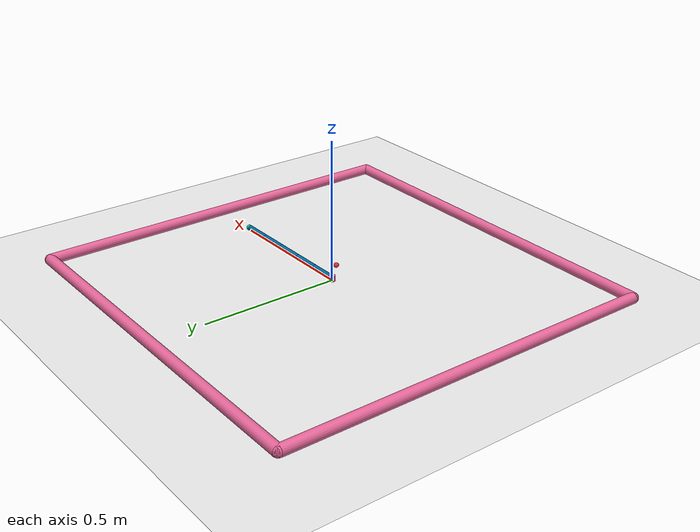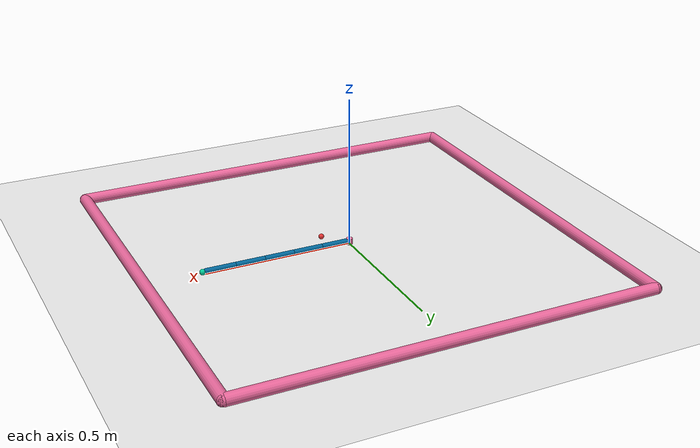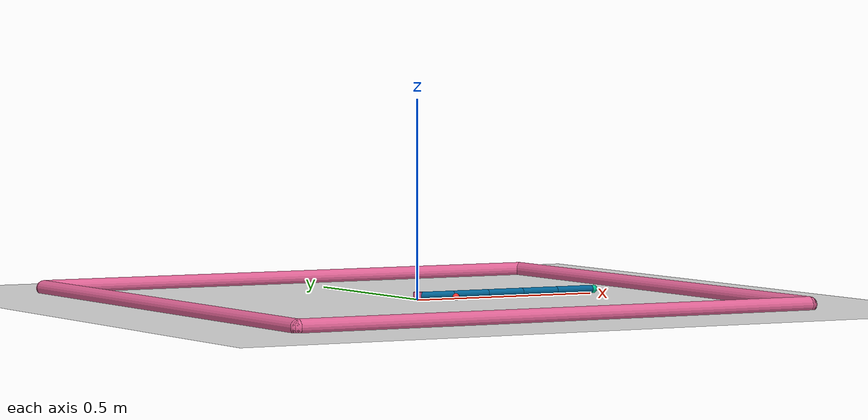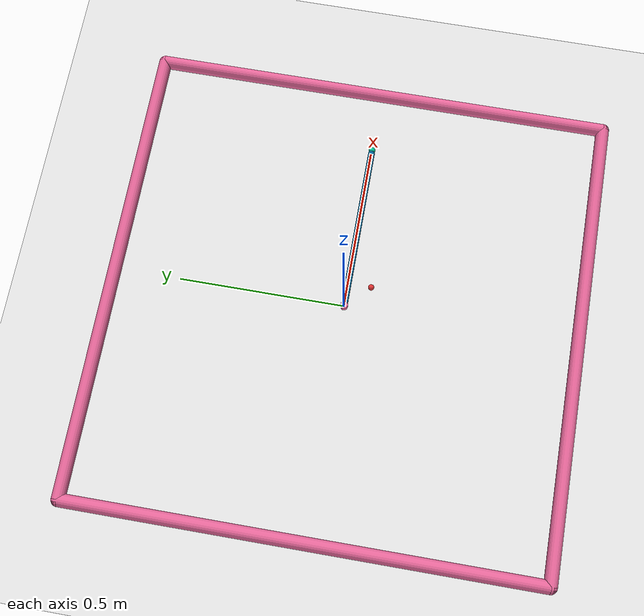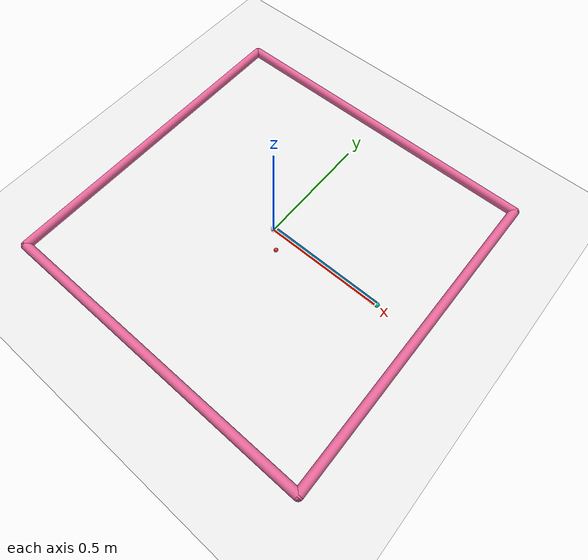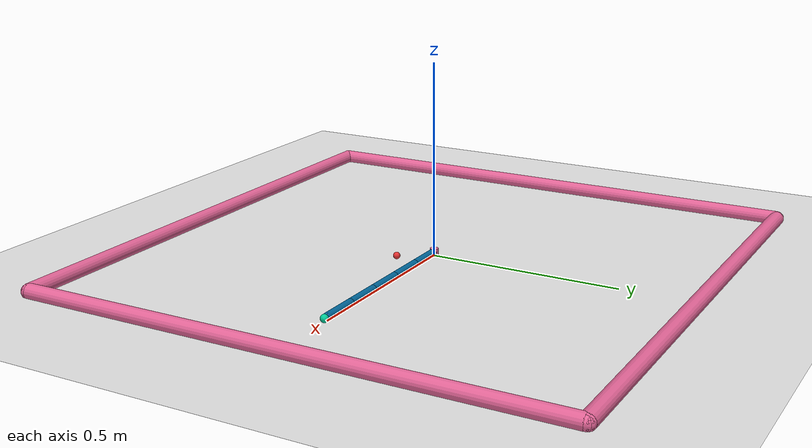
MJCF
<mujoco model="reacher">
	<compiler angle="radian" inertiafromgeom="true"/>
	<default>
		<joint armature="1" damping="1" limited="true"/>
		<geom contype="1" conaffinity="1" friction="1 0.1 0.1" rgba="0.7 0.7 0 1"/>
	</default>
	<option gravity="0 0 -9.81" integrator="RK4" timestep="0.01"/>
	<worldbody>
		<!-- Arena -->
		<geom conaffinity="0" contype="0" name="ground" pos="0 0 0" rgba="0.9 0.9 0.9 1" size="1 1 10" type="plane"/>
		<geom conaffinity="1" fromto="-.7 -.7 .01 .7 -.7 .01" name="sideS" rgba="0.9 0.4 0.6 1" size=".02" type="capsule"/>
		<geom conaffinity="1" fromto=" .7 -.7 .01 .7  .7 .01" name="sideE" rgba="0.9 0.4 0.6 1" size=".02" type="capsule"/>
		<geom conaffinity="1" fromto="-.7  .7 .01 .7  .7 .01" name="sideN" rgba="0.9 0.4 0.6 1" size=".02" type="capsule"/>
		<geom conaffinity="1" fromto="-.7 -.7 .01 -.7 .7 .01" name="sideW" rgba="0.9 0.4 0.6 1" size=".02" type="capsule"/>
		<!-- Arm -->
        <body name="root" pos="0 0 0">
		<geom fromto="0 0 0 0 0 0.02" name="root" rgba="0.9 0.4 0.6 1" size=".011" type="cylinder"/>
		<body name="body0" pos="0 0 .01">
			<geom fromto="0 0 0 0.1 0 0" name="link0" rgba="0.0 0.4 0.6 1" size=".01" type="capsule"/>
			<joint axis="0 0 1" limited="true" name="joint0" pos="0 0 0" range="-3.0 3.0" type="hinge"/>
			<body name="body1" pos="0.1 0 0">
				<joint axis="0 0 1" limited="true" name="joint1" pos="0 0 0" range="-3.0 3.0" type="hinge"/>
				<geom fromto="0 0 0 0.1 0 0" name="link1" rgba="0.0 0.4 0.6 1" size=".01" type="capsule"/>
                <body name="body2" pos="0.1 0 0">
                    <geom fromto="0 0 0 0.1 0 0" name="link2" rgba="0.0 0.4 0.6 1" size=".01" type="capsule"/>
    				<joint axis="0 0 1" limited="true" name="joint2" pos="0 0 0" range="-3.0 3.0" type="hinge"/>
                    <body name="body3" pos="0.1 0 0">
    				    <joint axis="0 0 1" limited="true" name="joint3" pos="0 0 0" range="-3.0 3.0" type="hinge"/>
	    			    <geom fromto="0 0 0 0.1 0 0" name="link3" rgba="0.0 0.4 0.6 1" size=".01" type="capsule"/>
                        <body name="body4" pos="0.1 0 0">
    				        <joint axis="0 0 1" limited="true" name="joint4" pos="0 0 0" range="-3.0 3.0" type="hinge"/>
	    			        <geom fromto="0 0 0 0.1 0 0" name="link4" rgba="0.0 0.4 0.6 1" size=".01" type="capsule"/>
                                <body name="fingertip" pos="0.11 0 0">
                                    <geom name="fingertip" pos="0 0 0" rgba="0.0 0.8 0.6 1" size=".01" type="sphere"/>

                            </body>
                         </body>
                    </body>
                </body>
			</body>
		</body>
        </body>
		<!-- Target -->
		<body name="target" pos="0 0 0">
			<joint armature="0" axis="1 0 0" damping="0" limited="false" name="target_x" pos="0 0 0" range="-.27 .27" ref=".1" stiffness="0" type="slide"/>
			<joint armature="0" axis="0 1 0" damping="0" limited="false" name="target_y" pos="0 0 0" range="-.27 .27" ref="-.1" stiffness="0" type="slide"/>
			<geom conaffinity="0" contype="0" name="target" pos=".07 -.07 .01" rgba="0.9 0.2 0.2 1" size=".009" type="sphere"/>
		</body>

	</worldbody>
	<actuator>
		<motor ctrllimited="true" ctrlrange="-1.0 1.0" gear="200.0" joint="joint0"/>
		<motor ctrllimited="true" ctrlrange="-1.0 1.0" gear="200.0" joint="joint1"/>
        <motor ctrllimited="true" ctrlrange="-1.0 1.0" gear="200.0" joint="joint2"/>
        <motor ctrllimited="true" ctrlrange="-1.0 1.0" gear="200.0" joint="joint3"/>
        <motor ctrllimited="true" ctrlrange="-1.0 1.0" gear="200.0" joint="joint4"/>
	</actuator>
</mujoco>
